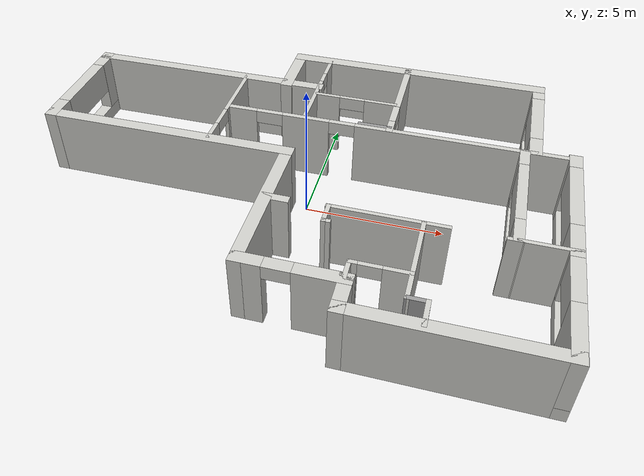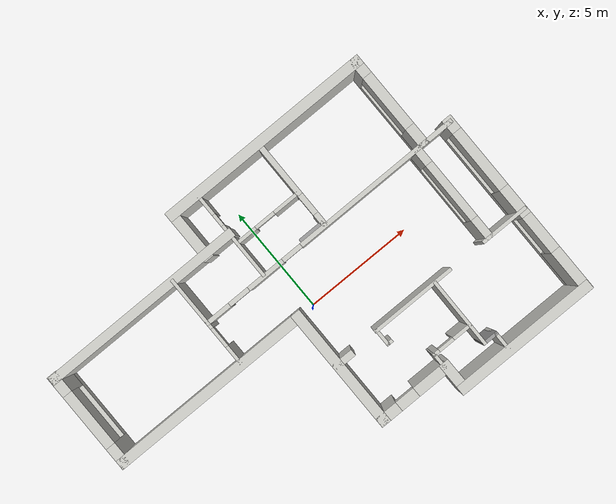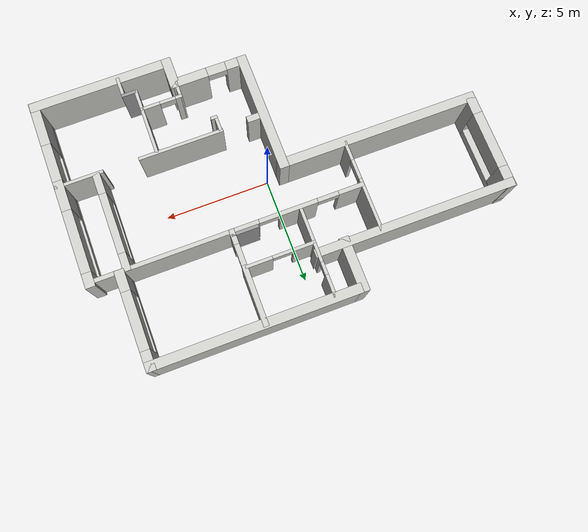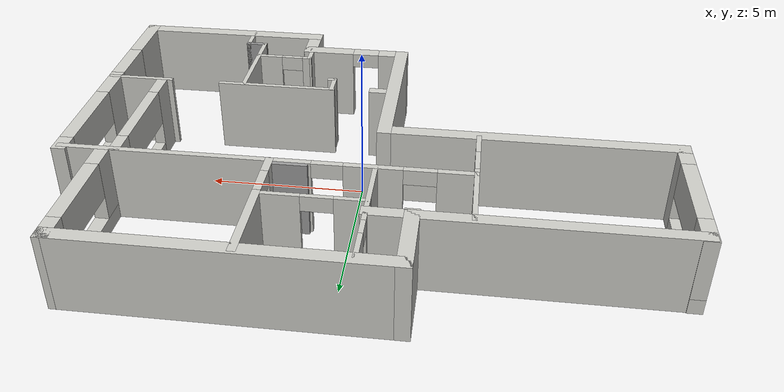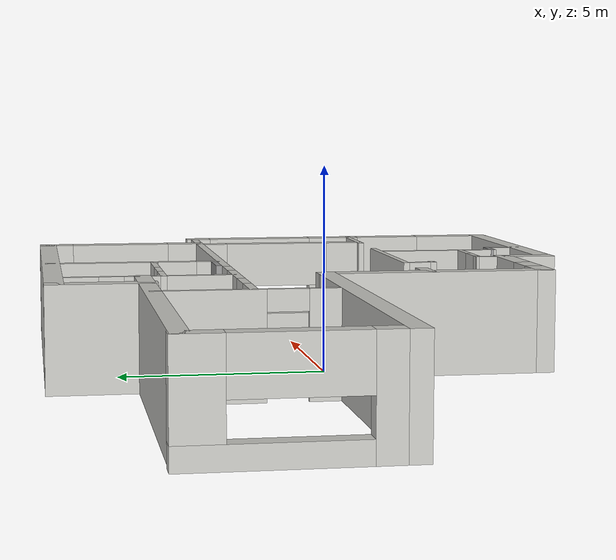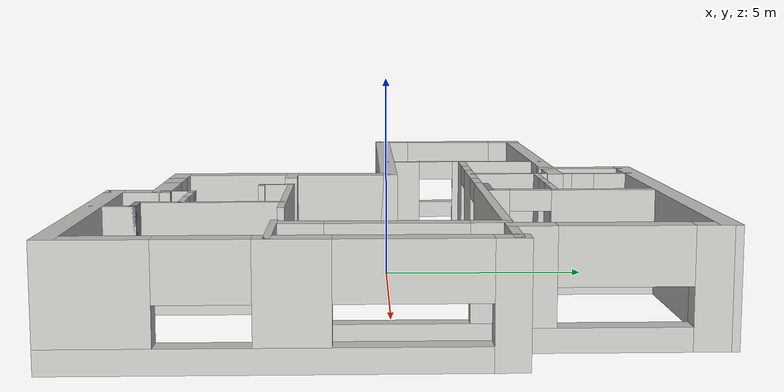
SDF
<?xml version='1.0'?>
<sdf version='1.7'>
  <model name='Flat'>
    <pose>-0.431116 0.065599 0 0 -0 0</pose>
    <link name='Wall_13'>
      <collision name='Wall_13_Collision'>
        <geometry>
          <box>
            <size>10.0498 0.45 2.5</size>
          </box>
        </geometry>
        <pose>0 0 1.25 0 -0 0</pose>
      </collision>
      <visual name='Wall_13_Visual'>
        <pose>0 0 1.25 0 -0 0</pose>
        <geometry>
          <box>
            <size>10.0498 0.45 2.5</size>
          </box>
        </geometry>
        <material>
          <script>
            <uri>file://media/materials/scripts/gazebo.material</uri>
            <name>Gazebo/CeilingTiled</name>
          </script>
          <ambient>1 1 1 1</ambient>
        </material>
        <meta>
          <layer>0</layer>
        </meta>
      </visual>
      <pose>3.25612 6.4294 0 0 -0 0</pose>
    </link>
    <link name='Wall_16'>
      <pose>-3.24151 2.22302 0 0 -0 -1.57039</pose>
      <visual name='Wall_16_Visual_0'>
        <pose>-0.939224 0 1.25 0 -0 0</pose>
        <geometry>
          <box>
            <size>2.5474 0.15 2.5</size>
          </box>
        </geometry>
        <material>
          <script>
            <uri>file://media/materials/scripts/gazebo.material</uri>
            <name>Gazebo/CeilingTiled</name>
          </script>
          <ambient>1 1 1 1</ambient>
        </material>
        <meta>
          <layer>0</layer>
        </meta>
      </visual>
      <collision name='Wall_16_Collision_0'>
        <geometry>
          <box>
            <size>2.5474 0.15 2.5</size>
          </box>
        </geometry>
        <pose>-0.939224 0 1.25 0 -0 0</pose>
      </collision>
      <visual name='Wall_16_Visual_1'>
        <pose>1.74386 0 1.25 0 -0 0</pose>
        <geometry>
          <box>
            <size>0.938123 0.15 2.5</size>
          </box>
        </geometry>
        <material>
          <script>
            <uri>file://media/materials/scripts/gazebo.material</uri>
            <name>Gazebo/CeilingTiled</name>
          </script>
          <ambient>1 1 1 1</ambient>
        </material>
        <meta>
          <layer>0</layer>
        </meta>
      </visual>
      <collision name='Wall_16_Collision_1'>
        <geometry>
          <box>
            <size>0.938123 0.15 2.5</size>
          </box>
        </geometry>
        <pose>1.74386 0 1.25 0 -0 0</pose>
      </collision>
      <visual name='Wall_16_Visual_2'>
        <pose>0.804637 0 2.25 0 -0 0</pose>
        <geometry>
          <box>
            <size>0.940325 0.15 0.5</size>
          </box>
        </geometry>
        <material>
          <script>
            <uri>file://media/materials/scripts/gazebo.material</uri>
            <name>Gazebo/CeilingTiled</name>
          </script>
          <ambient>1 1 1 1</ambient>
        </material>
        <meta>
          <layer>0</layer>
        </meta>
      </visual>
      <collision name='Wall_16_Collision_2'>
        <geometry>
          <box>
            <size>0.940325 0.15 0.5</size>
          </box>
        </geometry>
        <pose>0.804637 0 2.25 0 -0 0</pose>
      </collision>
    </link>
    <link name='Wall_20'>
      <collision name='Wall_20_Collision'>
        <geometry>
          <box>
            <size>6.79979 0.45 2.5</size>
          </box>
        </geometry>
        <pose>0 0 1.25 0 -0 0</pose>
      </collision>
      <visual name='Wall_20_Visual'>
        <pose>0 0 1.25 0 -0 0</pose>
        <geometry>
          <box>
            <size>6.79979 0.45 2.5</size>
          </box>
        </geometry>
        <material>
          <script>
            <uri>file://media/materials/scripts/gazebo.material</uri>
            <name>Gazebo/CeilingTiled</name>
          </script>
          <ambient>1 1 1 1</ambient>
        </material>
        <meta>
          <layer>0</layer>
        </meta>
      </visual>
      <pose>6.21912 -6.4286 0 0 -0 3.14159</pose>
    </link>
    <link name='Wall_21'>
      <collision name='Wall_21_Collision'>
        <geometry>
          <box>
            <size>1.53999 0.45 2.5</size>
          </box>
        </geometry>
        <pose>0 0 1.25 0 -0 0</pose>
      </collision>
      <visual name='Wall_21_Visual'>
        <pose>0 0 1.25 0 -0 0</pose>
        <geometry>
          <box>
            <size>1.53999 0.45 2.5</size>
          </box>
        </geometry>
        <material>
          <script>
            <uri>file://media/materials/scripts/gazebo.material</uri>
            <name>Gazebo/CeilingTiled</name>
          </script>
          <ambient>1 1 1 1</ambient>
        </material>
        <meta>
          <layer>0</layer>
        </meta>
      </visual>
      <pose>3.04412 -5.8836 0 0 -0 1.5708</pose>
    </link>
    <link name='Wall_22'>
      <pose>1.37962 -5.3386 0 0 -0 3.14159</pose>
      <visual name='Wall_22_Visual_0'>
        <pose>-0.981679 0 1.25 0 -0 0</pose>
        <geometry>
          <box>
            <size>1.81564 0.45 2.5</size>
          </box>
        </geometry>
        <material>
          <script>
            <uri>file://media/materials/scripts/gazebo.material</uri>
            <name>Gazebo/CeilingTiled</name>
          </script>
          <ambient>1 1 1 1</ambient>
        </material>
        <meta>
          <layer>0</layer>
        </meta>
      </visual>
      <collision name='Wall_22_Collision_0'>
        <geometry>
          <box>
            <size>1.81564 0.45 2.5</size>
          </box>
        </geometry>
        <pose>-0.981679 0 1.25 0 -0 0</pose>
      </collision>
      <visual name='Wall_22_Visual_1'>
        <pose>1.36348 0 1.25 0 -0 0</pose>
        <geometry>
          <box>
            <size>1.05204 0.45 2.5</size>
          </box>
        </geometry>
        <material>
          <script>
            <uri>file://media/materials/scripts/gazebo.material</uri>
            <name>Gazebo/CeilingTiled</name>
          </script>
          <ambient>1 1 1 1</ambient>
        </material>
        <meta>
          <layer>0</layer>
        </meta>
      </visual>
      <collision name='Wall_22_Collision_1'>
        <geometry>
          <box>
            <size>1.05204 0.45 2.5</size>
          </box>
        </geometry>
        <pose>1.36348 0 1.25 0 -0 0</pose>
      </collision>
      <visual name='Wall_22_Visual_2'>
        <pose>0.381803 0 2.25 0 -0 0</pose>
        <geometry>
          <box>
            <size>0.911323 0.45 0.5</size>
          </box>
        </geometry>
        <material>
          <script>
            <uri>file://media/materials/scripts/gazebo.material</uri>
            <name>Gazebo/CeilingTiled</name>
          </script>
          <ambient>1 1 1 1</ambient>
        </material>
        <meta>
          <layer>0</layer>
        </meta>
      </visual>
      <collision name='Wall_22_Collision_2'>
        <geometry>
          <box>
            <size>0.911323 0.45 0.5</size>
          </box>
        </geometry>
        <pose>0.381803 0 2.25 0 -0 0</pose>
      </collision>
    </link>
    <link name='Wall_23'>
      <collision name='Wall_23_Collision'>
        <geometry>
          <box>
            <size>5.8 0.45 2.5</size>
          </box>
        </geometry>
        <pose>0 0 1.25 0 -0 0</pose>
      </collision>
      <visual name='Wall_23_Visual'>
        <pose>0 0 1.25 0 -0 0</pose>
        <geometry>
          <box>
            <size>5.8 0.45 2.5</size>
          </box>
        </geometry>
        <material>
          <script>
            <uri>file://media/materials/scripts/gazebo.material</uri>
            <name>Gazebo/CeilingTiled</name>
          </script>
          <ambient>1 1 1 1</ambient>
        </material>
        <meta>
          <layer>0</layer>
        </meta>
      </visual>
      <pose>-0.284884 -2.6636 0 0 -0 1.5708</pose>
    </link>
    <link name='Wall_25'>
      <collision name='Wall_25_Collision'>
        <geometry>
          <box>
            <size>9.571 0.45 2.5</size>
          </box>
        </geometry>
        <pose>0 0 1.25 0 -0 0</pose>
      </collision>
      <visual name='Wall_25_Visual'>
        <pose>0 0 1.25 0 -0 0</pose>
        <geometry>
          <box>
            <size>9.571 0.45 2.5</size>
          </box>
        </geometry>
        <material>
          <script>
            <uri>file://media/materials/scripts/gazebo.material</uri>
            <name>Gazebo/CeilingTiled</name>
          </script>
          <ambient>1 1 1 1</ambient>
        </material>
        <meta>
          <layer>0</layer>
        </meta>
      </visual>
      <pose>-4.84539 0.011401 0 0 -0 3.14159</pose>
    </link>
    <link name='Wall_26'>
      <pose>-9.40588 2.1864 0 0 -0 1.5708</pose>
      <visual name='Wall_26_Visual_0'>
        <pose>-1.87053 0 1.25 0 -0 0</pose>
        <geometry>
          <box>
            <size>1.05894 0.45 2.5</size>
          </box>
        </geometry>
        <material>
          <script>
            <uri>file://media/materials/scripts/gazebo.material</uri>
            <name>Gazebo/CeilingTiled</name>
          </script>
          <ambient>1 1 1 1</ambient>
        </material>
        <meta>
          <layer>0</layer>
        </meta>
      </visual>
      <collision name='Wall_26_Collision_0'>
        <geometry>
          <box>
            <size>1.05894 0.45 2.5</size>
          </box>
        </geometry>
        <pose>-1.87053 0 1.25 0 -0 0</pose>
      </collision>
      <visual name='Wall_26_Visual_1'>
        <pose>0.52947 0 0.25 0 -0 0</pose>
        <geometry>
          <box>
            <size>3.74106 0.45 0.5</size>
          </box>
        </geometry>
        <material>
          <script>
            <uri>file://media/materials/scripts/gazebo.material</uri>
            <name>Gazebo/CeilingTiled</name>
          </script>
          <ambient>1 1 1 1</ambient>
        </material>
        <meta>
          <layer>0</layer>
        </meta>
      </visual>
      <collision name='Wall_26_Collision_1'>
        <geometry>
          <box>
            <size>3.74106 0.45 0.5</size>
          </box>
        </geometry>
        <pose>0.52947 0 0.25 0 -0 0</pose>
      </collision>
      <visual name='Wall_26_Visual_2'>
        <pose>1.88559 0 1.5 0 -0 0</pose>
        <geometry>
          <box>
            <size>1.02881 0.45 2</size>
          </box>
        </geometry>
        <material>
          <script>
            <uri>file://media/materials/scripts/gazebo.material</uri>
            <name>Gazebo/CeilingTiled</name>
          </script>
          <ambient>1 1 1 1</ambient>
        </material>
        <meta>
          <layer>0</layer>
        </meta>
      </visual>
      <collision name='Wall_26_Collision_2'>
        <geometry>
          <box>
            <size>1.02881 0.45 2</size>
          </box>
        </geometry>
        <pose>1.88559 0 1.5 0 -0 0</pose>
      </collision>
      <visual name='Wall_26_Visual_3'>
        <pose>0.015064 0 1.9 0 -0 0</pose>
        <geometry>
          <box>
            <size>2.71225 0.45 1.2</size>
          </box>
        </geometry>
        <material>
          <script>
            <uri>file://media/materials/scripts/gazebo.material</uri>
            <name>Gazebo/CeilingTiled</name>
          </script>
          <ambient>1 1 1 1</ambient>
        </material>
        <meta>
          <layer>0</layer>
        </meta>
      </visual>
      <collision name='Wall_26_Collision_3'>
        <geometry>
          <box>
            <size>2.71225 0.45 1.2</size>
          </box>
        </geometry>
        <pose>0.015064 0 1.9 0 -0 0</pose>
      </collision>
    </link>
    <link name='Wall_28'>
      <collision name='Wall_28_Collision'>
        <geometry>
          <box>
            <size>9.49 0.4 2.5</size>
          </box>
        </geometry>
        <pose>0 0 1.25 0 -0 0</pose>
      </collision>
      <visual name='Wall_28_Visual'>
        <pose>0 0 1.25 0 -0 0</pose>
        <geometry>
          <box>
            <size>9.49 0.4 2.5</size>
          </box>
        </geometry>
        <material>
          <script>
            <uri>file://media/materials/scripts/gazebo.material</uri>
            <name>Gazebo/CeilingTiled</name>
          </script>
          <ambient>1 1 1 1</ambient>
        </material>
        <meta>
          <layer>0</layer>
        </meta>
      </visual>
      <pose>-4.86088 4.3614 0 0 -0 0</pose>
    </link>
    <link name='Wall_32'>
      <pose>2.92112 4.3199 0 0 -0 1.56891</pose>
      <visual name='Wall_32_Visual_0'>
        <pose>-1.89381 0 1.25 0 -0 0</pose>
        <geometry>
          <box>
            <size>0.707366 0.25 2.5</size>
          </box>
        </geometry>
        <material>
          <script>
            <uri>file://media/materials/scripts/gazebo.material</uri>
            <name>Gazebo/CeilingTiled</name>
          </script>
          <ambient>1 1 1 1</ambient>
        </material>
        <meta>
          <layer>0</layer>
        </meta>
      </visual>
      <collision name='Wall_32_Collision_0'>
        <geometry>
          <box>
            <size>0.707366 0.25 2.5</size>
          </box>
        </geometry>
        <pose>-1.89381 0 1.25 0 -0 0</pose>
      </collision>
      <visual name='Wall_32_Visual_1'>
        <pose>0.843457 0 1.25 0 -0 0</pose>
        <geometry>
          <box>
            <size>2.80808 0.25 2.5</size>
          </box>
        </geometry>
        <material>
          <script>
            <uri>file://media/materials/scripts/gazebo.material</uri>
            <name>Gazebo/CeilingTiled</name>
          </script>
          <ambient>1 1 1 1</ambient>
        </material>
        <meta>
          <layer>0</layer>
        </meta>
      </visual>
      <collision name='Wall_32_Collision_1'>
        <geometry>
          <box>
            <size>2.80808 0.25 2.5</size>
          </box>
        </geometry>
        <pose>0.843457 0 1.25 0 -0 0</pose>
      </collision>
      <visual name='Wall_32_Visual_2'>
        <pose>-1.05036 0 2.25 0 -0 0</pose>
        <geometry>
          <box>
            <size>0.979548 0.25 0.5</size>
          </box>
        </geometry>
        <material>
          <script>
            <uri>file://media/materials/scripts/gazebo.material</uri>
            <name>Gazebo/CeilingTiled</name>
          </script>
          <ambient>1 1 1 1</ambient>
        </material>
        <meta>
          <layer>0</layer>
        </meta>
      </visual>
      <collision name='Wall_32_Collision_2'>
        <geometry>
          <box>
            <size>0.979548 0.25 0.5</size>
          </box>
        </geometry>
        <pose>-1.05036 0 2.25 0 -0 0</pose>
      </collision>
    </link>
    <link name='Wall_40'>
      <collision name='Wall_40_Collision'>
        <geometry>
          <box>
            <size>3.26896 0.15 2.5</size>
          </box>
        </geometry>
        <pose>0 0 1.25 0 -0 0</pose>
      </collision>
      <visual name='Wall_40_Visual'>
        <pose>0 0 1.25 0 -0 0</pose>
        <geometry>
          <box>
            <size>3.26896 0.15 2.5</size>
          </box>
        </geometry>
        <material>
          <script>
            <uri>file://media/materials/scripts/gazebo.material</uri>
            <name>Gazebo/CeilingTiled</name>
          </script>
          <ambient>1 1 1 1</ambient>
        </material>
        <meta>
          <layer>0</layer>
        </meta>
      </visual>
      <pose>4.833 -4.00987 0 0 -0 -1.57624</pose>
    </link>
    <link name='Wall_41'>
      <collision name='Wall_41_Collision'>
        <geometry>
          <box>
            <size>0.75 0.15 2.5</size>
          </box>
        </geometry>
        <pose>0 0 1.25 0 -0 0</pose>
      </collision>
      <visual name='Wall_41_Visual'>
        <pose>0 0 1.25 0 -0 0</pose>
        <geometry>
          <box>
            <size>0.75 0.15 2.5</size>
          </box>
        </geometry>
        <material>
          <script>
            <uri>file://media/materials/scripts/gazebo.material</uri>
            <name>Gazebo/Grey</name>
          </script>
          <ambient>1 1 1 1</ambient>
        </material>
        <meta>
          <layer>0</layer>
        </meta>
      </visual>
      <pose>5.12452 -5.56932 0 0 -0 0</pose>
    </link>
    <link name='Wall_42'>
      <collision name='Wall_42_Collision'>
        <geometry>
          <box>
            <size>1 0.15 2.5</size>
          </box>
        </geometry>
        <pose>0 0 1.25 0 -0 0</pose>
      </collision>
      <visual name='Wall_42_Visual'>
        <pose>0 0 1.25 0 -0 0</pose>
        <geometry>
          <box>
            <size>1 0.15 2.5</size>
          </box>
        </geometry>
        <material>
          <script>
            <uri>file://media/materials/scripts/gazebo.material</uri>
            <name>Gazebo/CeilingTiled</name>
          </script>
          <ambient>1 1 1 1</ambient>
        </material>
        <meta>
          <layer>0</layer>
        </meta>
      </visual>
      <pose>5.42452 -5.99432 0 0 -0 -1.5708</pose>
    </link>
    <link name='Wall_44'>
      <pose>3.89952 -4.63822 0 0 -0 3.14159</pose>
      <visual name='Wall_44_Visual_0'>
        <pose>-0.535994 0 1.25 0 -0 0</pose>
        <geometry>
          <box>
            <size>0.928012 0.15 2.5</size>
          </box>
        </geometry>
        <material>
          <script>
            <uri>file://media/materials/scripts/gazebo.material</uri>
            <name>Gazebo/CeilingTiled</name>
          </script>
          <ambient>1 1 1 1</ambient>
        </material>
        <meta>
          <layer>0</layer>
        </meta>
      </visual>
      <collision name='Wall_44_Collision_0'>
        <geometry>
          <box>
            <size>0.928012 0.15 2.5</size>
          </box>
        </geometry>
        <pose>-0.535994 0 1.25 0 -0 0</pose>
      </collision>
      <visual name='Wall_44_Visual_1'>
        <pose>0.837595 0 1.25 0 -0 0</pose>
        <geometry>
          <box>
            <size>0.32481 0.15 2.5</size>
          </box>
        </geometry>
        <material>
          <script>
            <uri>file://media/materials/scripts/gazebo.material</uri>
            <name>Gazebo/CeilingTiled</name>
          </script>
          <ambient>1 1 1 1</ambient>
        </material>
        <meta>
          <layer>0</layer>
        </meta>
      </visual>
      <collision name='Wall_44_Collision_1'>
        <geometry>
          <box>
            <size>0.32481 0.15 2.5</size>
          </box>
        </geometry>
        <pose>0.837595 0 1.25 0 -0 0</pose>
      </collision>
      <visual name='Wall_44_Visual_2'>
        <pose>0.301601 0 2.25 0 -0 0</pose>
        <geometry>
          <box>
            <size>0.747178 0.15 0.5</size>
          </box>
        </geometry>
        <material>
          <script>
            <uri>file://media/materials/scripts/gazebo.material</uri>
            <name>Gazebo/CeilingTiled</name>
          </script>
          <ambient>1 1 1 1</ambient>
        </material>
        <meta>
          <layer>0</layer>
        </meta>
      </visual>
      <collision name='Wall_44_Collision_2'>
        <geometry>
          <box>
            <size>0.747178 0.15 0.5</size>
          </box>
        </geometry>
        <pose>0.301601 0 2.25 0 -0 0</pose>
      </collision>
    </link>
    <link name='Wall_45'>
      <collision name='Wall_45_Collision'>
        <geometry>
          <box>
            <size>0.824477 0.15 2.5</size>
          </box>
        </geometry>
        <pose>0 0 1.25 0 -0 0</pose>
      </collision>
      <visual name='Wall_45_Visual'>
        <pose>0 0 1.25 0 -0 0</pose>
        <geometry>
          <box>
            <size>0.824477 0.15 2.5</size>
          </box>
        </geometry>
        <material>
          <script>
            <uri>file://media/materials/scripts/gazebo.material</uri>
            <name>Gazebo/CeilingTiled</name>
          </script>
          <ambient>1 1 1 1</ambient>
        </material>
        <meta>
          <layer>0</layer>
        </meta>
      </visual>
      <pose>2.97377 -4.97546 0 0 -0 -1.57302</pose>
    </link>
    <link name='Wall_47'>
      <collision name='Wall_47_Collision'>
        <geometry>
          <box>
            <size>0.846256 0.15 2.5</size>
          </box>
        </geometry>
        <pose>0 0 1.25 0 -0 0</pose>
      </collision>
      <visual name='Wall_47_Visual'>
        <pose>0 0 1.25 0 -0 0</pose>
        <geometry>
          <box>
            <size>0.846256 0.15 2.5</size>
          </box>
        </geometry>
        <material>
          <script>
            <uri>file://media/materials/scripts/gazebo.material</uri>
            <name>Gazebo/CeilingTiled</name>
          </script>
          <ambient>1 1 1 1</ambient>
        </material>
        <meta>
          <layer>0</layer>
        </meta>
      </visual>
      <pose>1.80793 -2.76499 0 0 -0 -1.5708</pose>
    </link>
    <link name='Wall_53'>
      <collision name='Wall_53_Collision'>
        <geometry>
          <box>
            <size>2.55044 0.45 2.5</size>
          </box>
        </geometry>
        <pose>0 0 1.25 0 -0 0</pose>
      </collision>
      <visual name='Wall_53_Visual'>
        <pose>0 0 1.25 0 -0 0</pose>
        <geometry>
          <box>
            <size>2.55044 0.45 2.5</size>
          </box>
        </geometry>
        <material>
          <script>
            <uri>file://media/materials/scripts/gazebo.material</uri>
            <name>Gazebo/CeilingTiled</name>
          </script>
          <ambient>1 1 1 1</ambient>
        </material>
        <meta>
          <layer>0</layer>
        </meta>
      </visual>
      <pose>-1.54388 5.3794 0 0 -0 -1.5708</pose>
    </link>
    <link name='Wall_59'>
      <pose>-0.270526 4.28655 0 0 -0 1.56977</pose>
      <visual name='Wall_59_Visual_0'>
        <pose>-0.809294 0 1.25 0 -0 0</pose>
        <geometry>
          <box>
            <size>2.64031 0.15 2.5</size>
          </box>
        </geometry>
        <material>
          <script>
            <uri>file://media/materials/scripts/gazebo.material</uri>
            <name>Gazebo/CeilingTiled</name>
          </script>
          <ambient>1 1 1 1</ambient>
        </material>
        <meta>
          <layer>0</layer>
        </meta>
      </visual>
      <collision name='Wall_59_Collision_0'>
        <geometry>
          <box>
            <size>2.64031 0.15 2.5</size>
          </box>
        </geometry>
        <pose>-0.809294 0 1.25 0 -0 0</pose>
      </collision>
      <visual name='Wall_59_Visual_1'>
        <pose>1.60981 0 1.25 0 -0 0</pose>
        <geometry>
          <box>
            <size>1.03928 0.15 2.5</size>
          </box>
        </geometry>
        <material>
          <script>
            <uri>file://media/materials/scripts/gazebo.material</uri>
            <name>Gazebo/CeilingTiled</name>
          </script>
          <ambient>1 1 1 1</ambient>
        </material>
        <meta>
          <layer>0</layer>
        </meta>
      </visual>
      <collision name='Wall_59_Collision_1'>
        <geometry>
          <box>
            <size>1.03928 0.15 2.5</size>
          </box>
        </geometry>
        <pose>1.60981 0 1.25 0 -0 0</pose>
      </collision>
      <visual name='Wall_59_Visual_2'>
        <pose>0.800518 0 2.25 0 -0 0</pose>
        <geometry>
          <box>
            <size>0.579311 0.15 0.5</size>
          </box>
        </geometry>
        <material>
          <script>
            <uri>file://media/materials/scripts/gazebo.material</uri>
            <name>Gazebo/CeilingTiled</name>
          </script>
          <ambient>1 1 1 1</ambient>
        </material>
        <meta>
          <layer>0</layer>
        </meta>
      </visual>
      <collision name='Wall_59_Collision_2'>
        <geometry>
          <box>
            <size>0.579311 0.15 0.5</size>
          </box>
        </geometry>
        <pose>0.800518 0 2.25 0 -0 0</pose>
      </collision>
    </link>
    <link name='Wall_61'>
      <pose>3.1136 2.16583 0 0 -0 -3.14089</pose>
      <visual name='Wall_61_Visual_0'>
        <pose>-2.4794 0 1.25 0 -0 0</pose>
        <geometry>
          <box>
            <size>7.88017 0.2 2.5</size>
          </box>
        </geometry>
        <material>
          <script>
            <uri>file://media/materials/scripts/gazebo.material</uri>
            <name>Gazebo/CeilingTiled</name>
          </script>
          <ambient>1 1 1 1</ambient>
        </material>
        <meta>
          <layer>0</layer>
        </meta>
      </visual>
      <collision name='Wall_61_Collision_0'>
        <geometry>
          <box>
            <size>7.88017 0.2 2.5</size>
          </box>
        </geometry>
        <pose>-2.4794 0 1.25 0 -0 0</pose>
      </collision>
      <visual name='Wall_61_Visual_1'>
        <pose>3.31421 0 1.25 0 -0 0</pose>
        <geometry>
          <box>
            <size>1.78674 0.2 2.5</size>
          </box>
        </geometry>
        <material>
          <script>
            <uri>file://media/materials/scripts/gazebo.material</uri>
            <name>Gazebo/CeilingTiled</name>
          </script>
          <ambient>1 1 1 1</ambient>
        </material>
        <meta>
          <layer>0</layer>
        </meta>
      </visual>
      <collision name='Wall_61_Collision_1'>
        <geometry>
          <box>
            <size>1.78674 0.2 2.5</size>
          </box>
        </geometry>
        <pose>3.31421 0 1.25 0 -0 0</pose>
      </collision>
      <visual name='Wall_61_Visual_2'>
        <pose>5.81283 0 1.25 0 -0 0</pose>
        <geometry>
          <box>
            <size>1.21331 0.2 2.5</size>
          </box>
        </geometry>
        <material>
          <script>
            <uri>file://media/materials/scripts/gazebo.material</uri>
            <name>Gazebo/CeilingTiled</name>
          </script>
          <ambient>1 1 1 1</ambient>
        </material>
        <meta>
          <layer>0</layer>
        </meta>
      </visual>
      <collision name='Wall_61_Collision_2'>
        <geometry>
          <box>
            <size>1.21331 0.2 2.5</size>
          </box>
        </geometry>
        <pose>5.81283 0 1.25 0 -0 0</pose>
      </collision>
      <visual name='Wall_61_Visual_3'>
        <pose>1.94076 0 2.25 0 -0 0</pose>
        <geometry>
          <box>
            <size>0.96015 0.2 0.5</size>
          </box>
        </geometry>
        <material>
          <script>
            <uri>file://media/materials/scripts/gazebo.material</uri>
            <name>Gazebo/CeilingTiled</name>
          </script>
          <ambient>1 1 1 1</ambient>
        </material>
        <meta>
          <layer>0</layer>
        </meta>
      </visual>
      <collision name='Wall_61_Collision_3'>
        <geometry>
          <box>
            <size>0.96015 0.2 0.5</size>
          </box>
        </geometry>
        <pose>1.94076 0 2.25 0 -0 0</pose>
      </collision>
      <visual name='Wall_61_Visual_4'>
        <pose>4.70688 0 2.25 0 -0 0</pose>
        <geometry>
          <box>
            <size>0.998594 0.2 0.5</size>
          </box>
        </geometry>
        <material>
          <script>
            <uri>file://media/materials/scripts/gazebo.material</uri>
            <name>Gazebo/CeilingTiled</name>
          </script>
          <ambient>1 1 1 1</ambient>
        </material>
        <meta>
          <layer>0</layer>
        </meta>
      </visual>
      <collision name='Wall_61_Collision_4'>
        <geometry>
          <box>
            <size>0.998594 0.2 0.5</size>
          </box>
        </geometry>
        <pose>4.70688 0 2.25 0 -0 0</pose>
      </collision>
    </link>
    <link name='Wall_64'>
      <pose>1.27518 3.87256 0 0 -0 0</pose>
      <visual name='Wall_64_Visual_0'>
        <pose>-1.10154 0 1.25 0 -0 0</pose>
        <geometry>
          <box>
            <size>1.04693 0.15 2.5</size>
          </box>
        </geometry>
        <material>
          <script>
            <uri>file://media/materials/scripts/gazebo.material</uri>
            <name>Gazebo/CeilingTiled</name>
          </script>
          <ambient>1 1 1 1</ambient>
        </material>
        <meta>
          <layer>0</layer>
        </meta>
      </visual>
      <collision name='Wall_64_Collision_0'>
        <geometry>
          <box>
            <size>1.04693 0.15 2.5</size>
          </box>
        </geometry>
        <pose>-1.10154 0 1.25 0 -0 0</pose>
      </collision>
      <visual name='Wall_64_Visual_1'>
        <pose>1.00329 0 1.25 0 -0 0</pose>
        <geometry>
          <box>
            <size>1.24341 0.15 2.5</size>
          </box>
        </geometry>
        <material>
          <script>
            <uri>file://media/materials/scripts/gazebo.material</uri>
            <name>Gazebo/CeilingTiled</name>
          </script>
          <ambient>1 1 1 1</ambient>
        </material>
        <meta>
          <layer>0</layer>
        </meta>
      </visual>
      <collision name='Wall_64_Collision_1'>
        <geometry>
          <box>
            <size>1.24341 0.15 2.5</size>
          </box>
        </geometry>
        <pose>1.00329 0 1.25 0 -0 0</pose>
      </collision>
      <visual name='Wall_64_Visual_2'>
        <pose>-0.098244 0 2.25 0 -0 0</pose>
        <geometry>
          <box>
            <size>0.959661 0.15 0.5</size>
          </box>
        </geometry>
        <material>
          <script>
            <uri>file://media/materials/scripts/gazebo.material</uri>
            <name>Gazebo/CeilingTiled</name>
          </script>
          <ambient>1 1 1 1</ambient>
        </material>
        <meta>
          <layer>0</layer>
        </meta>
      </visual>
      <collision name='Wall_64_Collision_2'>
        <geometry>
          <box>
            <size>0.959661 0.15 0.5</size>
          </box>
        </geometry>
        <pose>-0.098244 0 2.25 0 -0 0</pose>
      </collision>
    </link>
    <link name='Wall_75'>
      <collision name='Wall_75_Collision'>
        <geometry>
          <box>
            <size>4 0.15 2.5</size>
          </box>
        </geometry>
        <pose>0 0 1.25 0 -0 0</pose>
      </collision>
      <visual name='Wall_75_Visual'>
        <pose>0 0 1.25 0 -0 0</pose>
        <geometry>
          <box>
            <size>4 0.15 2.5</size>
          </box>
        </geometry>
        <material>
          <script>
            <uri>file://media/materials/scripts/gazebo.material</uri>
            <name>Gazebo/CeilingTiled</name>
          </script>
          <ambient>1 1 1 1</ambient>
        </material>
        <meta>
          <layer>0</layer>
        </meta>
      </visual>
      <pose>3.70202 -2.41012 0 0 -0 3.14159</pose>
    </link>
    <link name='Wall_77'>
      <collision name='Wall_77_Collision'>
        <geometry>
          <box>
            <size>0.312367 0.15 2.5</size>
          </box>
        </geometry>
        <pose>0 0 1.25 0 -0 0</pose>
      </collision>
      <visual name='Wall_77_Visual'>
        <pose>0 0 1.25 0 -0 0</pose>
        <geometry>
          <box>
            <size>0.312367 0.15 2.5</size>
          </box>
        </geometry>
        <material>
          <script>
            <uri>file://media/materials/scripts/gazebo.material</uri>
            <name>Gazebo/CeilingTiled</name>
          </script>
          <ambient>1 1 1 1</ambient>
        </material>
        <meta>
          <layer>0</layer>
        </meta>
      </visual>
      <pose>1.88904 -3.1131 0 0 -0 0</pose>
    </link>
    <link name='Wall_80'>
      <collision name='Wall_80_Collision'>
        <geometry>
          <box>
            <size>2.25 0.15 2.5</size>
          </box>
        </geometry>
        <pose>0 0 1.25 0 -0 0</pose>
      </collision>
      <visual name='Wall_80_Visual'>
        <pose>0 0 1.25 0 -0 0</pose>
        <geometry>
          <box>
            <size>2.25 0.15 2.5</size>
          </box>
        </geometry>
        <material>
          <script>
            <uri>file://media/materials/scripts/gazebo.material</uri>
            <name>Gazebo/CeilingTiled</name>
          </script>
          <ambient>1 1 1 1</ambient>
        </material>
        <meta>
          <layer>0</layer>
        </meta>
      </visual>
      <pose>8.47568 -2.41782 0 0 -0 3.14159</pose>
    </link>
    <link name='Wall_82'>
      <pose>9.40588 -2.12975 0 0 -0 -1.5708</pose>
      <visual name='Wall_82_Visual_0'>
        <pose>-4.18605 0 1.25 0 -0 0</pose>
        <geometry>
          <box>
            <size>0.677895 0.45 2.5</size>
          </box>
        </geometry>
        <material>
          <script>
            <uri>file://media/materials/scripts/gazebo.material</uri>
            <name>Gazebo/CeilingTiled</name>
          </script>
          <ambient>1 1 1 1</ambient>
        </material>
        <meta>
          <layer>0</layer>
        </meta>
      </visual>
      <collision name='Wall_82_Collision_0'>
        <geometry>
          <box>
            <size>0.677895 0.45 2.5</size>
          </box>
        </geometry>
        <pose>-4.18605 0 1.25 0 -0 0</pose>
      </collision>
      <visual name='Wall_82_Visual_1'>
        <pose>0.338948 0 0.25 0 -0 0</pose>
        <geometry>
          <box>
            <size>8.3721 0.45 0.5</size>
          </box>
        </geometry>
        <material>
          <script>
            <uri>file://media/materials/scripts/gazebo.material</uri>
            <name>Gazebo/CeilingTiled</name>
          </script>
          <ambient>1 1 1 1</ambient>
        </material>
        <meta>
          <layer>0</layer>
        </meta>
      </visual>
      <collision name='Wall_82_Collision_1'>
        <geometry>
          <box>
            <size>8.3721 0.45 0.5</size>
          </box>
        </geometry>
        <pose>0.338948 0 0.25 0 -0 0</pose>
      </collision>
      <visual name='Wall_82_Visual_2'>
        <pose>-0.169906 0 1.5 0 -0 0</pose>
        <geometry>
          <box>
            <size>1.447 0.45 2</size>
          </box>
        </geometry>
        <material>
          <script>
            <uri>file://media/materials/scripts/gazebo.material</uri>
            <name>Gazebo/CeilingTiled</name>
          </script>
          <ambient>1 1 1 1</ambient>
        </material>
        <meta>
          <layer>0</layer>
        </meta>
      </visual>
      <collision name='Wall_82_Collision_2'>
        <geometry>
          <box>
            <size>1.447 0.45 2</size>
          </box>
        </geometry>
        <pose>-0.169906 0 1.5 0 -0 0</pose>
      </collision>
      <visual name='Wall_82_Visual_3'>
        <pose>3.44457 0 1.5 0 -0 0</pose>
        <geometry>
          <box>
            <size>2.16087 0.45 2</size>
          </box>
        </geometry>
        <material>
          <script>
            <uri>file://media/materials/scripts/gazebo.material</uri>
            <name>Gazebo/CeilingTiled</name>
          </script>
          <ambient>1 1 1 1</ambient>
        </material>
        <meta>
          <layer>0</layer>
        </meta>
      </visual>
      <collision name='Wall_82_Collision_3'>
        <geometry>
          <box>
            <size>2.16087 0.45 2</size>
          </box>
        </geometry>
        <pose>3.44457 0 1.5 0 -0 0</pose>
      </collision>
      <visual name='Wall_82_Visual_4'>
        <pose>-2.37026 0 1.9 0 -0 0</pose>
        <geometry>
          <box>
            <size>2.9537 0.45 1.2</size>
          </box>
        </geometry>
        <material>
          <script>
            <uri>file://media/materials/scripts/gazebo.material</uri>
            <name>Gazebo/CeilingTiled</name>
          </script>
          <ambient>1 1 1 1</ambient>
        </material>
        <meta>
          <layer>0</layer>
        </meta>
      </visual>
      <collision name='Wall_82_Collision_4'>
        <geometry>
          <box>
            <size>2.9537 0.45 1.2</size>
          </box>
        </geometry>
        <pose>-2.37026 0 1.9 0 -0 0</pose>
      </collision>
      <visual name='Wall_82_Visual_5'>
        <pose>1.45886 0 1.9 0 -0 0</pose>
        <geometry>
          <box>
            <size>1.81054 0.45 1.2</size>
          </box>
        </geometry>
        <material>
          <script>
            <uri>file://media/materials/scripts/gazebo.material</uri>
            <name>Gazebo/CeilingTiled</name>
          </script>
          <ambient>1 1 1 1</ambient>
        </material>
        <meta>
          <layer>0</layer>
        </meta>
      </visual>
      <collision name='Wall_82_Collision_5'>
        <geometry>
          <box>
            <size>1.81054 0.45 1.2</size>
          </box>
        </geometry>
        <pose>1.45886 0 1.9 0 -0 0</pose>
      </collision>
    </link>
    <link name='Wall_87'>
      <pose>7.70548 -0.117687 0 0 -0 1.56947</pose>
      <visual name='Wall_87_Visual_0'>
        <pose>-1.84379 0 1.25 0 -0 0</pose>
        <geometry>
          <box>
            <size>1.06232 0.35 2.5</size>
          </box>
        </geometry>
        <material>
          <script>
            <uri>file://media/materials/scripts/gazebo.material</uri>
            <name>Gazebo/CeilingTiled</name>
          </script>
          <ambient>1 1 1 1</ambient>
        </material>
        <meta>
          <layer>0</layer>
        </meta>
      </visual>
      <collision name='Wall_87_Collision_0'>
        <geometry>
          <box>
            <size>1.06232 0.35 2.5</size>
          </box>
        </geometry>
        <pose>-1.84379 0 1.25 0 -0 0</pose>
      </collision>
      <visual name='Wall_87_Visual_1'>
        <pose>0.531159 0 0.25 0 -0 0</pose>
        <geometry>
          <box>
            <size>3.68757 0.35 0.5</size>
          </box>
        </geometry>
        <material>
          <script>
            <uri>file://media/materials/scripts/gazebo.material</uri>
            <name>Gazebo/CeilingTiled</name>
          </script>
          <ambient>1 1 1 1</ambient>
        </material>
        <meta>
          <layer>0</layer>
        </meta>
      </visual>
      <collision name='Wall_87_Collision_1'>
        <geometry>
          <box>
            <size>3.68757 0.35 0.5</size>
          </box>
        </geometry>
        <pose>0.531159 0 0.25 0 -0 0</pose>
      </collision>
      <visual name='Wall_87_Visual_2'>
        <pose>1.95716 0 1.5 0 -0 0</pose>
        <geometry>
          <box>
            <size>0.835575 0.35 2</size>
          </box>
        </geometry>
        <material>
          <script>
            <uri>file://media/materials/scripts/gazebo.material</uri>
            <name>Gazebo/CeilingTiled</name>
          </script>
          <ambient>1 1 1 1</ambient>
        </material>
        <meta>
          <layer>0</layer>
        </meta>
      </visual>
      <collision name='Wall_87_Collision_2'>
        <geometry>
          <box>
            <size>0.835575 0.35 2</size>
          </box>
        </geometry>
        <pose>1.95716 0 1.5 0 -0 0</pose>
      </collision>
      <visual name='Wall_87_Visual_3'>
        <pose>0.113371 0 1.9 0 -0 0</pose>
        <geometry>
          <box>
            <size>2.852 0.35 1.2</size>
          </box>
        </geometry>
        <material>
          <script>
            <uri>file://media/materials/scripts/gazebo.material</uri>
            <name>Gazebo/CeilingTiled</name>
          </script>
          <ambient>1 1 1 1</ambient>
        </material>
        <meta>
          <layer>0</layer>
        </meta>
      </visual>
      <collision name='Wall_87_Collision_3'>
        <geometry>
          <box>
            <size>2.852 0.35 1.2</size>
          </box>
        </geometry>
        <pose>0.113371 0 1.9 0 -0 0</pose>
      </collision>
    </link>
    <link name='Wall_89'>
      <pose>8.05928 4.36565 0 0 -0 -1.56926</pose>
      <visual name='Wall_89_Visual_0'>
        <pose>-1.82852 0 1.25 0 -0 0</pose>
        <geometry>
          <box>
            <size>0.920456 0.45 2.5</size>
          </box>
        </geometry>
        <material>
          <script>
            <uri>file://media/materials/scripts/gazebo.material</uri>
            <name>Gazebo/CeilingTiled</name>
          </script>
          <ambient>1 1 1 1</ambient>
        </material>
        <meta>
          <layer>0</layer>
        </meta>
      </visual>
      <collision name='Wall_89_Collision_0'>
        <geometry>
          <box>
            <size>0.920456 0.45 2.5</size>
          </box>
        </geometry>
        <pose>-1.82852 0 1.25 0 -0 0</pose>
      </collision>
      <visual name='Wall_89_Visual_1'>
        <pose>0.460228 0 0.25 0 -0 0</pose>
        <geometry>
          <box>
            <size>3.65704 0.45 0.5</size>
          </box>
        </geometry>
        <material>
          <script>
            <uri>file://media/materials/scripts/gazebo.material</uri>
            <name>Gazebo/CeilingTiled</name>
          </script>
          <ambient>1 1 1 1</ambient>
        </material>
        <meta>
          <layer>0</layer>
        </meta>
      </visual>
      <collision name='Wall_89_Collision_1'>
        <geometry>
          <box>
            <size>3.65704 0.45 0.5</size>
          </box>
        </geometry>
        <pose>0.460228 0 0.25 0 -0 0</pose>
      </collision>
      <visual name='Wall_89_Visual_2'>
        <pose>1.79309 0 1.5 0 -0 0</pose>
        <geometry>
          <box>
            <size>0.991319 0.45 2</size>
          </box>
        </geometry>
        <material>
          <script>
            <uri>file://media/materials/scripts/gazebo.material</uri>
            <name>Gazebo/CeilingTiled</name>
          </script>
          <ambient>1 1 1 1</ambient>
        </material>
        <meta>
          <layer>0</layer>
        </meta>
      </visual>
      <collision name='Wall_89_Collision_2'>
        <geometry>
          <box>
            <size>0.991319 0.45 2</size>
          </box>
        </geometry>
        <pose>1.79309 0 1.5 0 -0 0</pose>
      </collision>
      <visual name='Wall_89_Visual_3'>
        <pose>-0.035431 0 1.9 0 -0 0</pose>
        <geometry>
          <box>
            <size>2.66572 0.45 1.2</size>
          </box>
        </geometry>
        <material>
          <script>
            <uri>file://media/materials/scripts/gazebo.material</uri>
            <name>Gazebo/CeilingTiled</name>
          </script>
          <ambient>1 1 1 1</ambient>
        </material>
        <meta>
          <layer>0</layer>
        </meta>
      </visual>
      <collision name='Wall_89_Collision_3'>
        <geometry>
          <box>
            <size>2.66572 0.45 1.2</size>
          </box>
        </geometry>
        <pose>-0.035431 0 1.9 0 -0 0</pose>
      </collision>
    </link>
    <link name='Wall_91'>
      <collision name='Wall_91_Collision'>
        <geometry>
          <box>
            <size>1.25 0.15 2.5</size>
          </box>
        </geometry>
        <pose>0 0 1.25 0 -0 0</pose>
      </collision>
      <visual name='Wall_91_Visual'>
        <pose>0 0 1.25 0 -0 0</pose>
        <geometry>
          <box>
            <size>1.25 0.15 2.5</size>
          </box>
        </geometry>
        <material>
          <script>
            <uri>file://media/materials/scripts/gazebo.material</uri>
            <name>Gazebo/Grey</name>
          </script>
          <ambient>1 1 1 1</ambient>
        </material>
        <meta>
          <layer>0</layer>
        </meta>
      </visual>
      <pose>2.35189 2.33362 0 0 -0 0</pose>
    </link>
    <link name='Wall_93'>
      <collision name='Wall_93_Collision'>
        <geometry>
          <box>
            <size>1 0.3 2.5</size>
          </box>
        </geometry>
        <pose>0 0 1.25 0 -0 0</pose>
      </collision>
      <visual name='Wall_93_Visual'>
        <pose>0 0 1.25 0 -0 0</pose>
        <geometry>
          <box>
            <size>1 0.3 2.5</size>
          </box>
        </geometry>
        <material>
          <script>
            <uri>file://media/materials/scripts/gazebo.material</uri>
            <name>Gazebo/CeilingTiled</name>
          </script>
          <ambient>1 1 1 1</ambient>
        </material>
        <meta>
          <layer>0</layer>
        </meta>
      </visual>
      <pose>0.023704 -2.48659 0 0 -0 0</pose>
    </link>
    <static>1</static>
  </model>
</sdf>
